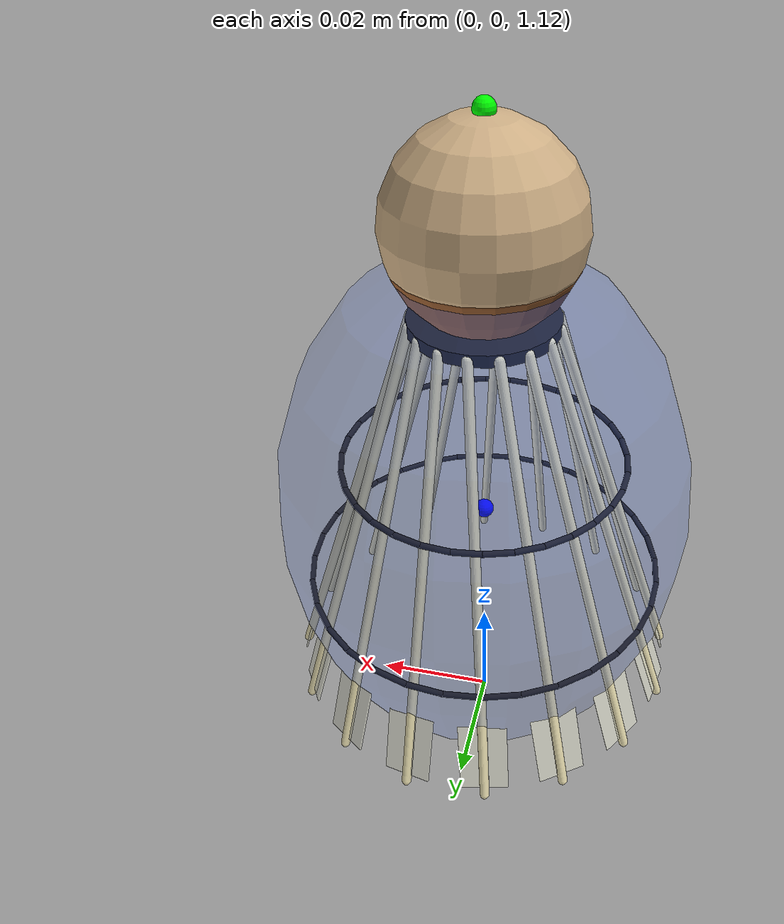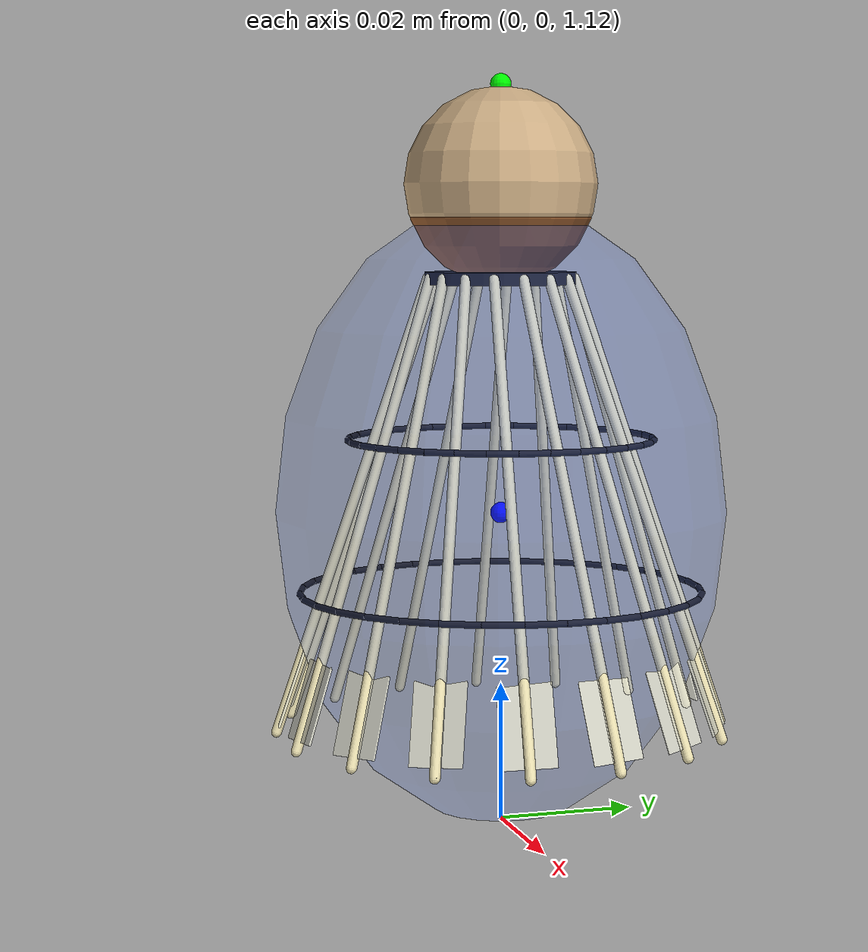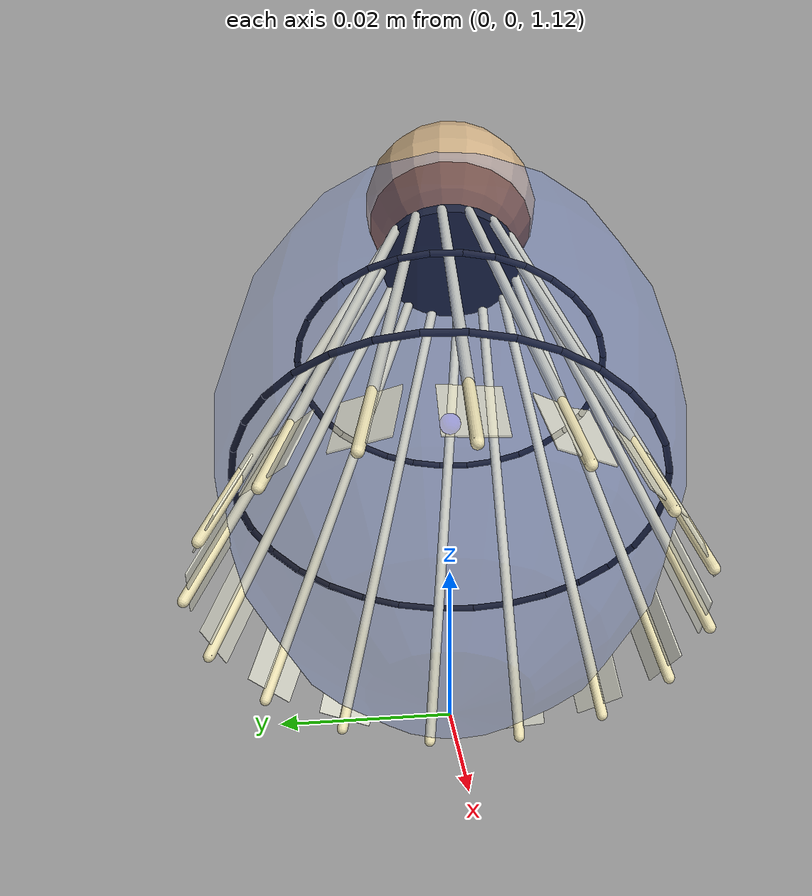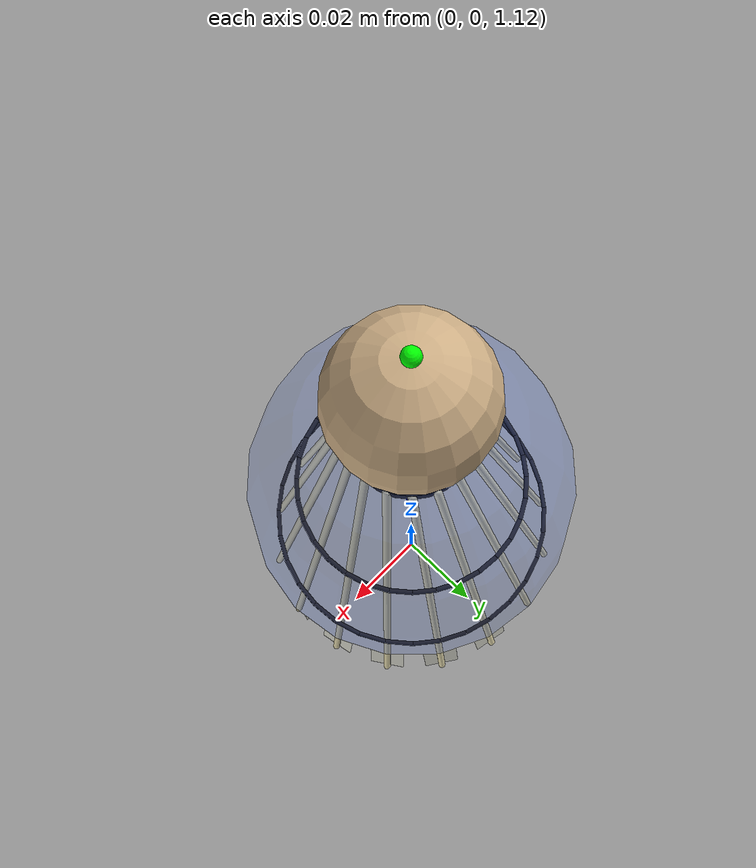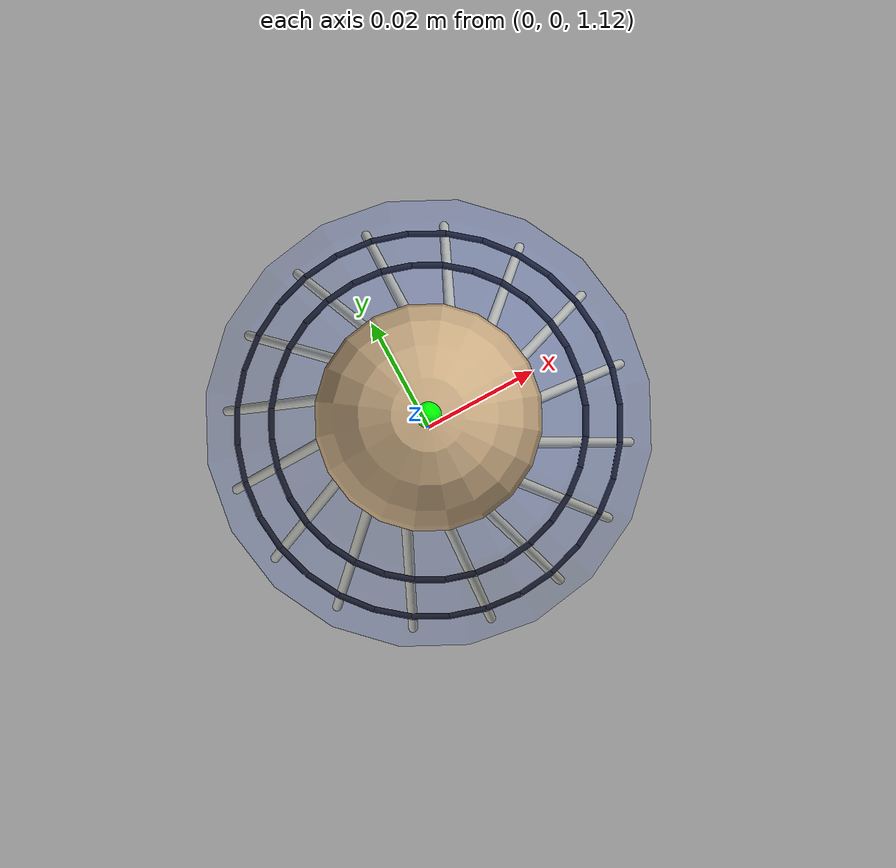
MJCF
<mujoco model="badminton_shuttlecock_nominal_v1">
  <compiler angle="degree" autolimits="true"/>
  <option timestep="0.0005" integrator="implicitfast" gravity="0 0 -9.81" wind="0 0 0"/>

  <default>
    <default class="visual">
      <geom contype="0" conaffinity="0" group="2"/>
    </default>
    <default class="collision">
      <geom contype="1" conaffinity="1" group="1" friction="0.6 0.01 0.001" solref="0.002 1" solimp="0.90 0.95 0.001 0.5 2"/>
    </default>
  </default>

  <asset>
    <material name="cork" rgba="0.56 0.34 0.17 1"/>
    <material name="leather" rgba="0.80 0.68 0.52 1"/>
    <material name="feather" rgba="0.95 0.95 0.88 0.72"/>
    <material name="quill" rgba="0.92 0.88 0.70 1"/>
    <material name="thread" rgba="0.10 0.08 0.06 1"/>
    <material name="aero" rgba="0.20 0.40 1.00 0.07"/>
  </asset>

  <worldbody>
    <light name="top_light" pos="0 0 4" dir="0 0 -1"/>
    <geom name="floor" type="plane" size="4 4 0.1" rgba="0.85 0.85 0.85 1"/>
    <camera name="shuttle_closeup" mode="fixed" pos="0.22 -0.34 1.25" xyaxes="0.839570 0.543251 0 -0.117856 0.182142 0.976184"/>
    <camera name="shuttle_side" mode="fixed" pos="0.42 0 1.20" xyaxes="0 1 0 0 0 1"/>
    <camera name="shuttle_top" mode="fixed" pos="0 0 1.62" xyaxes="1 0 0 0 1 0"/>

    <!-- Body origin is the estimated center of mass. +Z points toward the cork/base/nose. -->
    <body name="shuttle" pos="0 0 1.20">
      <freejoint name="shuttle_free"/>
      <inertial pos="0 0 0" mass="0.00519" diaginertia="3.32e-6 3.32e-6 1.06e-6"/>

      <site name="shuttle_com" pos="0 0 0" size="0.0015" rgba="1 0 0 1"/>
      <site name="shuttle_cp_nominal" pos="0 0 -0.035" size="0.0015" rgba="0 0 1 1"/>
      <site name="shuttle_nose" pos="0 0 0.026" size="0.0015" rgba="0 1 0 1"/>
      <site name="cork_contact_site" pos="0 0 0.011154" size="0.0020" rgba="1 0.5 0 1"/>

      <!-- Real contact should happen mainly at the cork/base. Feather collision is disabled. -->
      <geom class="collision" name="cork_collision" type="sphere" pos="0 0 0.011154" size="0.0135" material="cork"/>
      <geom class="visual" name="leather_cap_visual" type="sphere" pos="0 0 0.012000" size="0.0138" material="leather"/>
      <geom class="visual" name="base_top_ring_visual" type="cylinder" pos="0 0 -0.001346" size="0.0108 0.0009" material="thread"/>

      <!-- Aerodynamic proxy: visual only. Custom force code applies drag at this region. -->
      <geom class="visual" name="aero_proxy_visual" type="ellipsoid" pos="0 0 -0.035" size="0.0325 0.0325 0.045" material="aero"/>

      <geom class="visual" name="feather_quill_00" type="capsule" fromto="0.010500 0.000000 -0.001346 0.031790 0.006757 -0.066346" size="0.00075" material="quill"/>
      <geom class="visual" name="feather_vane_00_0" type="box" pos="0.015610 0.001622 -0.016946" quat="0.809190 0.009494 0.584994 0.053885" size="0.009622 0.001750 0.000120" material="feather"/>
      <geom class="visual" name="feather_vane_00_1" type="box" pos="0.021464 0.003480 -0.034821" quat="0.809146 -0.012666 0.583299 0.069882" size="0.011341 0.002750 0.000120" material="feather"/>
      <geom class="visual" name="feather_vane_00_2" type="box" pos="0.027745 0.005473 -0.053996" quat="0.808428 -0.036368 0.581002 0.086942" size="0.011684 0.003750 0.000120" material="feather"/>
      <geom class="visual" name="feather_quill_01" type="capsule" fromto="0.009701 0.004018 -0.001346 0.026784 0.018408 -0.066346" size="0.00075" material="quill"/>
      <geom class="visual" name="feather_vane_01_0" type="box" pos="0.013801 0.007472 -0.016946" quat="0.783129 -0.104816 0.575606 0.210714" size="0.009622 0.001750 0.000120" material="feather"/>
      <geom class="visual" name="feather_vane_01_1" type="box" pos="0.018499 0.011429 -0.034821" quat="0.779966 -0.126218 0.569621 0.226395" size="0.011341 0.002750 0.000120" material="feather"/>
      <geom class="visual" name="feather_vane_01_2" type="box" pos="0.023538 0.015674 -0.053996" quat="0.775933 -0.149017 0.562743 0.242988" size="0.011684 0.003750 0.000120" material="feather"/>
      <geom class="visual" name="feather_quill_02" type="capsule" fromto="0.007425 0.007425 -0.001346 0.017701 0.027257 -0.066346" size="0.00075" material="quill"/>
      <geom class="visual" name="feather_vane_02_0" type="box" pos="0.009891 0.012184 -0.016946" quat="0.726973 -0.215097 0.544097 0.359446" size="0.009622 0.001750 0.000120" material="feather"/>
      <geom class="visual" name="feather_vane_02_1" type="box" pos="0.012717 0.017638 -0.034821" quat="0.720811 -0.234921 0.534051 0.374209" size="0.011341 0.002750 0.000120" material="feather"/>
      <geom class="visual" name="feather_vane_02_2" type="box" pos="0.015748 0.023489 -0.053996" quat="0.713619 -0.255939 0.522858 0.389696" size="0.011684 0.003750 0.000120" material="feather"/>
      <geom class="visual" name="feather_quill_03" type="capsule" fromto="0.004018 0.009701 -0.001346 0.005923 0.031956 -0.066346" size="0.00075" material="quill"/>
      <geom class="visual" name="feather_vane_03_0" type="box" pos="0.004475 0.015042 -0.016946" quat="0.642880 -0.317112 0.491679 0.494365" size="0.009622 0.001750 0.000120" material="feather"/>
      <geom class="visual" name="feather_vane_03_1" type="box" pos="0.004999 0.021162 -0.034821" quat="0.633956 -0.334595 0.477959 0.507642" size="0.011341 0.002750 0.000120" material="feather"/>
      <geom class="visual" name="feather_vane_03_2" type="box" pos="0.005561 0.027727 -0.053996" quat="0.623881 -0.353026 0.462880 0.521428" size="0.011684 0.003750 0.000120" material="feather"/>
      <geom class="visual" name="feather_quill_04" type="capsule" fromto="0.000000 0.010500 -0.001346 -0.006757 0.031790 -0.066346" size="0.00075" material="quill"/>
      <geom class="visual" name="feather_vane_04_0" type="box" pos="-0.001622 0.015610 -0.016946" quat="0.534081 -0.406940 0.420366 0.610286" size="0.009622 0.001750 0.000120" material="feather"/>
      <geom class="visual" name="feather_vane_04_1" type="box" pos="-0.003480 0.021464 -0.034821" quat="0.522739 -0.421411 0.403499 0.621567" size="0.011341 0.002750 0.000120" material="feather"/>
      <geom class="visual" name="feather_vane_04_2" type="box" pos="-0.005473 0.027745 -0.053996" quat="0.510168 -0.436546 0.385114 0.633122" size="0.011684 0.003750 0.000120" material="feather"/>
      <geom class="visual" name="feather_quill_05" type="capsule" fromto="-0.004018 0.009701 -0.001346 -0.018408 0.026784 -0.066346" size="0.00075" material="quill"/>
      <geom class="visual" name="feather_vane_05_0" type="box" pos="-0.007472 0.013801 -0.016946" quat="0.404758 -0.481131 0.332899 0.702753" size="0.009622 0.001750 0.000120" material="feather"/>
      <geom class="visual" name="feather_vane_05_1" type="box" pos="-0.011429 0.018499 -0.034821" quat="0.391433 -0.492032 0.313533 0.711605" size="0.011341 0.002750 0.000120" material="feather"/>
      <geom class="visual" name="feather_vane_05_2" type="box" pos="-0.015674 0.023538 -0.053996" quat="0.376849 -0.503290 0.292549 0.720486" size="0.011684 0.003750 0.000120" material="feather"/>
      <geom class="visual" name="feather_quill_06" type="capsule" fromto="-0.007425 0.007425 -0.001346 -0.027257 0.017701 -0.066346" size="0.00075" material="quill"/>
      <geom class="visual" name="feather_vane_06_0" type="box" pos="-0.012184 0.009891 -0.016946" quat="0.259881 -0.536831 0.232639 0.768215" size="0.009622 0.001750 0.000120" material="feather"/>
      <geom class="visual" name="feather_vane_06_1" type="box" pos="-0.017638 0.012717 -0.034821" quat="0.245085 -0.543745 0.211517 0.774296" size="0.011341 0.002750 0.000120" material="feather"/>
      <geom class="visual" name="feather_vane_06_2" type="box" pos="-0.023489 0.015748 -0.053996" quat="0.229048 -0.550693 0.188740 0.780161" size="0.011684 0.003750 0.000120" material="feather"/>
      <geom class="visual" name="feather_quill_07" type="capsule" fromto="-0.009701 0.004018 -0.001346 -0.031956 0.005923 -0.066346" size="0.00075" material="quill"/>
      <geom class="visual" name="feather_vane_07_0" type="box" pos="-0.015042 0.004475 -0.016946" quat="0.105016 -0.571902 0.123438 0.804154" size="0.009622 0.001750 0.000120" material="feather"/>
      <geom class="visual" name="feather_vane_07_1" type="box" pos="-0.021162 0.004999 -0.034821" quat="0.089318 -0.574563 0.101374 0.807232" size="0.011341 0.002750 0.000120" material="feather"/>
      <geom class="visual" name="feather_vane_07_2" type="box" pos="-0.027727 0.005561 -0.053996" quat="0.072445 -0.576933 0.077679 0.809856" size="0.011684 0.003750 0.000120" material="feather"/>
      <geom class="visual" name="feather_quill_08" type="capsule" fromto="-0.010500 0.000000 -0.001346 -0.031790 -0.006757 -0.066346" size="0.00075" material="quill"/>
      <geom class="visual" name="feather_vane_08_0" type="box" pos="-0.015610 -0.001622 -0.016946" quat="-0.053885 -0.584994 0.009494 0.809190" size="0.009622 0.001750 0.000120" material="feather"/>
      <geom class="visual" name="feather_vane_08_1" type="box" pos="-0.021464 -0.003480 -0.034821" quat="-0.069882 -0.583299 -0.012666 0.809146" size="0.011341 0.002750 0.000120" material="feather"/>
      <geom class="visual" name="feather_vane_08_2" type="box" pos="-0.027745 -0.005473 -0.053996" quat="-0.086942 -0.581002 -0.036368 0.808428" size="0.011684 0.003750 0.000120" material="feather"/>
      <geom class="visual" name="feather_quill_09" type="capsule" fromto="-0.009701 -0.004018 -0.001346 -0.026784 -0.018408 -0.066346" size="0.00075" material="quill"/>
      <geom class="visual" name="feather_vane_09_0" type="box" pos="-0.013801 -0.007472 -0.016946" quat="-0.210714 -0.575606 -0.104816 0.783129" size="0.009622 0.001750 0.000120" material="feather"/>
      <geom class="visual" name="feather_vane_09_1" type="box" pos="-0.018499 -0.011429 -0.034821" quat="-0.226395 -0.569621 -0.126218 0.779966" size="0.011341 0.002750 0.000120" material="feather"/>
      <geom class="visual" name="feather_vane_09_2" type="box" pos="-0.023538 -0.015674 -0.053996" quat="-0.242988 -0.562743 -0.149017 0.775933" size="0.011684 0.003750 0.000120" material="feather"/>
      <geom class="visual" name="feather_quill_10" type="capsule" fromto="-0.007425 -0.007425 -0.001346 -0.017701 -0.027257 -0.066346" size="0.00075" material="quill"/>
      <geom class="visual" name="feather_vane_10_0" type="box" pos="-0.009891 -0.012184 -0.016946" quat="-0.359446 -0.544097 -0.215097 0.726973" size="0.009622 0.001750 0.000120" material="feather"/>
      <geom class="visual" name="feather_vane_10_1" type="box" pos="-0.012717 -0.017638 -0.034821" quat="-0.374209 -0.534051 -0.234921 0.720811" size="0.011341 0.002750 0.000120" material="feather"/>
      <geom class="visual" name="feather_vane_10_2" type="box" pos="-0.015748 -0.023489 -0.053996" quat="-0.389696 -0.522858 -0.255939 0.713619" size="0.011684 0.003750 0.000120" material="feather"/>
      <geom class="visual" name="feather_quill_11" type="capsule" fromto="-0.004018 -0.009701 -0.001346 -0.005923 -0.031956 -0.066346" size="0.00075" material="quill"/>
      <geom class="visual" name="feather_vane_11_0" type="box" pos="-0.004475 -0.015042 -0.016946" quat="-0.494365 -0.491679 -0.317112 0.642880" size="0.009622 0.001750 0.000120" material="feather"/>
      <geom class="visual" name="feather_vane_11_1" type="box" pos="-0.004999 -0.021162 -0.034821" quat="0.507642 0.477959 0.334595 -0.633956" size="0.011341 0.002750 0.000120" material="feather"/>
      <geom class="visual" name="feather_vane_11_2" type="box" pos="-0.005561 -0.027727 -0.053996" quat="0.521428 0.462880 0.353026 -0.623881" size="0.011684 0.003750 0.000120" material="feather"/>
      <geom class="visual" name="feather_quill_12" type="capsule" fromto="-0.000000 -0.010500 -0.001346 0.006757 -0.031790 -0.066346" size="0.00075" material="quill"/>
      <geom class="visual" name="feather_vane_12_0" type="box" pos="0.001622 -0.015610 -0.016946" quat="0.610286 0.420366 0.406940 -0.534081" size="0.009622 0.001750 0.000120" material="feather"/>
      <geom class="visual" name="feather_vane_12_1" type="box" pos="0.003480 -0.021464 -0.034821" quat="0.621567 0.403499 0.421411 -0.522739" size="0.011341 0.002750 0.000120" material="feather"/>
      <geom class="visual" name="feather_vane_12_2" type="box" pos="0.005473 -0.027745 -0.053996" quat="0.633122 0.385114 0.436546 -0.510168" size="0.011684 0.003750 0.000120" material="feather"/>
      <geom class="visual" name="feather_quill_13" type="capsule" fromto="0.004018 -0.009701 -0.001346 0.018408 -0.026784 -0.066346" size="0.00075" material="quill"/>
      <geom class="visual" name="feather_vane_13_0" type="box" pos="0.007472 -0.013801 -0.016946" quat="0.702753 0.332899 0.481131 -0.404758" size="0.009622 0.001750 0.000120" material="feather"/>
      <geom class="visual" name="feather_vane_13_1" type="box" pos="0.011429 -0.018499 -0.034821" quat="0.711605 0.313533 0.492032 -0.391433" size="0.011341 0.002750 0.000120" material="feather"/>
      <geom class="visual" name="feather_vane_13_2" type="box" pos="0.015674 -0.023538 -0.053996" quat="0.720486 0.292549 0.503290 -0.376849" size="0.011684 0.003750 0.000120" material="feather"/>
      <geom class="visual" name="feather_quill_14" type="capsule" fromto="0.007425 -0.007425 -0.001346 0.027257 -0.017701 -0.066346" size="0.00075" material="quill"/>
      <geom class="visual" name="feather_vane_14_0" type="box" pos="0.012184 -0.009891 -0.016946" quat="0.768215 0.232639 0.536831 -0.259881" size="0.009622 0.001750 0.000120" material="feather"/>
      <geom class="visual" name="feather_vane_14_1" type="box" pos="0.017638 -0.012717 -0.034821" quat="0.774296 0.211517 0.543745 -0.245085" size="0.011341 0.002750 0.000120" material="feather"/>
      <geom class="visual" name="feather_vane_14_2" type="box" pos="0.023489 -0.015748 -0.053996" quat="0.780161 0.188740 0.550693 -0.229048" size="0.011684 0.003750 0.000120" material="feather"/>
      <geom class="visual" name="feather_quill_15" type="capsule" fromto="0.009701 -0.004018 -0.001346 0.031956 -0.005923 -0.066346" size="0.00075" material="quill"/>
      <geom class="visual" name="feather_vane_15_0" type="box" pos="0.015042 -0.004475 -0.016946" quat="0.804154 0.123438 0.571902 -0.105016" size="0.009622 0.001750 0.000120" material="feather"/>
      <geom class="visual" name="feather_vane_15_1" type="box" pos="0.021162 -0.004999 -0.034821" quat="0.807232 0.101374 0.574563 -0.089318" size="0.011341 0.002750 0.000120" material="feather"/>
      <geom class="visual" name="feather_vane_15_2" type="box" pos="0.027727 -0.005561 -0.053996" quat="0.809856 0.077679 0.576933 -0.072445" size="0.011684 0.003750 0.000120" material="feather"/>

      <geom class="visual" name="thread_front_00" type="capsule" fromto="0.022000 0.000000 -0.024346 0.021577 0.004292 -0.024346" size="0.000450" material="thread"/>
      <geom class="visual" name="thread_front_01" type="capsule" fromto="0.021577 0.004292 -0.024346 0.020325 0.008419 -0.024346" size="0.000450" material="thread"/>
      <geom class="visual" name="thread_front_02" type="capsule" fromto="0.020325 0.008419 -0.024346 0.018292 0.012223 -0.024346" size="0.000450" material="thread"/>
      <geom class="visual" name="thread_front_03" type="capsule" fromto="0.018292 0.012223 -0.024346 0.015556 0.015556 -0.024346" size="0.000450" material="thread"/>
      <geom class="visual" name="thread_front_04" type="capsule" fromto="0.015556 0.015556 -0.024346 0.012223 0.018292 -0.024346" size="0.000450" material="thread"/>
      <geom class="visual" name="thread_front_05" type="capsule" fromto="0.012223 0.018292 -0.024346 0.008419 0.020325 -0.024346" size="0.000450" material="thread"/>
      <geom class="visual" name="thread_front_06" type="capsule" fromto="0.008419 0.020325 -0.024346 0.004292 0.021577 -0.024346" size="0.000450" material="thread"/>
      <geom class="visual" name="thread_front_07" type="capsule" fromto="0.004292 0.021577 -0.024346 0.000000 0.022000 -0.024346" size="0.000450" material="thread"/>
      <geom class="visual" name="thread_front_08" type="capsule" fromto="0.000000 0.022000 -0.024346 -0.004292 0.021577 -0.024346" size="0.000450" material="thread"/>
      <geom class="visual" name="thread_front_09" type="capsule" fromto="-0.004292 0.021577 -0.024346 -0.008419 0.020325 -0.024346" size="0.000450" material="thread"/>
      <geom class="visual" name="thread_front_10" type="capsule" fromto="-0.008419 0.020325 -0.024346 -0.012223 0.018292 -0.024346" size="0.000450" material="thread"/>
      <geom class="visual" name="thread_front_11" type="capsule" fromto="-0.012223 0.018292 -0.024346 -0.015556 0.015556 -0.024346" size="0.000450" material="thread"/>
      <geom class="visual" name="thread_front_12" type="capsule" fromto="-0.015556 0.015556 -0.024346 -0.018292 0.012223 -0.024346" size="0.000450" material="thread"/>
      <geom class="visual" name="thread_front_13" type="capsule" fromto="-0.018292 0.012223 -0.024346 -0.020325 0.008419 -0.024346" size="0.000450" material="thread"/>
      <geom class="visual" name="thread_front_14" type="capsule" fromto="-0.020325 0.008419 -0.024346 -0.021577 0.004292 -0.024346" size="0.000450" material="thread"/>
      <geom class="visual" name="thread_front_15" type="capsule" fromto="-0.021577 0.004292 -0.024346 -0.022000 0.000000 -0.024346" size="0.000450" material="thread"/>
      <geom class="visual" name="thread_front_16" type="capsule" fromto="-0.022000 0.000000 -0.024346 -0.021577 -0.004292 -0.024346" size="0.000450" material="thread"/>
      <geom class="visual" name="thread_front_17" type="capsule" fromto="-0.021577 -0.004292 -0.024346 -0.020325 -0.008419 -0.024346" size="0.000450" material="thread"/>
      <geom class="visual" name="thread_front_18" type="capsule" fromto="-0.020325 -0.008419 -0.024346 -0.018292 -0.012223 -0.024346" size="0.000450" material="thread"/>
      <geom class="visual" name="thread_front_19" type="capsule" fromto="-0.018292 -0.012223 -0.024346 -0.015556 -0.015556 -0.024346" size="0.000450" material="thread"/>
      <geom class="visual" name="thread_front_20" type="capsule" fromto="-0.015556 -0.015556 -0.024346 -0.012223 -0.018292 -0.024346" size="0.000450" material="thread"/>
      <geom class="visual" name="thread_front_21" type="capsule" fromto="-0.012223 -0.018292 -0.024346 -0.008419 -0.020325 -0.024346" size="0.000450" material="thread"/>
      <geom class="visual" name="thread_front_22" type="capsule" fromto="-0.008419 -0.020325 -0.024346 -0.004292 -0.021577 -0.024346" size="0.000450" material="thread"/>
      <geom class="visual" name="thread_front_23" type="capsule" fromto="-0.004292 -0.021577 -0.024346 -0.000000 -0.022000 -0.024346" size="0.000450" material="thread"/>
      <geom class="visual" name="thread_front_24" type="capsule" fromto="-0.000000 -0.022000 -0.024346 0.004292 -0.021577 -0.024346" size="0.000450" material="thread"/>
      <geom class="visual" name="thread_front_25" type="capsule" fromto="0.004292 -0.021577 -0.024346 0.008419 -0.020325 -0.024346" size="0.000450" material="thread"/>
      <geom class="visual" name="thread_front_26" type="capsule" fromto="0.008419 -0.020325 -0.024346 0.012223 -0.018292 -0.024346" size="0.000450" material="thread"/>
      <geom class="visual" name="thread_front_27" type="capsule" fromto="0.012223 -0.018292 -0.024346 0.015556 -0.015556 -0.024346" size="0.000450" material="thread"/>
      <geom class="visual" name="thread_front_28" type="capsule" fromto="0.015556 -0.015556 -0.024346 0.018292 -0.012223 -0.024346" size="0.000450" material="thread"/>
      <geom class="visual" name="thread_front_29" type="capsule" fromto="0.018292 -0.012223 -0.024346 0.020325 -0.008419 -0.024346" size="0.000450" material="thread"/>
      <geom class="visual" name="thread_front_30" type="capsule" fromto="0.020325 -0.008419 -0.024346 0.021577 -0.004292 -0.024346" size="0.000450" material="thread"/>
      <geom class="visual" name="thread_front_31" type="capsule" fromto="0.021577 -0.004292 -0.024346 0.022000 -0.000000 -0.024346" size="0.000450" material="thread"/>
      <geom class="visual" name="thread_rear_00" type="capsule" fromto="0.029000 0.000000 -0.046346 0.028443 0.005658 -0.046346" size="0.000450" material="thread"/>
      <geom class="visual" name="thread_rear_01" type="capsule" fromto="0.028443 0.005658 -0.046346 0.026793 0.011098 -0.046346" size="0.000450" material="thread"/>
      <geom class="visual" name="thread_rear_02" type="capsule" fromto="0.026793 0.011098 -0.046346 0.024113 0.016112 -0.046346" size="0.000450" material="thread"/>
      <geom class="visual" name="thread_rear_03" type="capsule" fromto="0.024113 0.016112 -0.046346 0.020506 0.020506 -0.046346" size="0.000450" material="thread"/>
      <geom class="visual" name="thread_rear_04" type="capsule" fromto="0.020506 0.020506 -0.046346 0.016112 0.024113 -0.046346" size="0.000450" material="thread"/>
      <geom class="visual" name="thread_rear_05" type="capsule" fromto="0.016112 0.024113 -0.046346 0.011098 0.026793 -0.046346" size="0.000450" material="thread"/>
      <geom class="visual" name="thread_rear_06" type="capsule" fromto="0.011098 0.026793 -0.046346 0.005658 0.028443 -0.046346" size="0.000450" material="thread"/>
      <geom class="visual" name="thread_rear_07" type="capsule" fromto="0.005658 0.028443 -0.046346 0.000000 0.029000 -0.046346" size="0.000450" material="thread"/>
      <geom class="visual" name="thread_rear_08" type="capsule" fromto="0.000000 0.029000 -0.046346 -0.005658 0.028443 -0.046346" size="0.000450" material="thread"/>
      <geom class="visual" name="thread_rear_09" type="capsule" fromto="-0.005658 0.028443 -0.046346 -0.011098 0.026793 -0.046346" size="0.000450" material="thread"/>
      <geom class="visual" name="thread_rear_10" type="capsule" fromto="-0.011098 0.026793 -0.046346 -0.016112 0.024113 -0.046346" size="0.000450" material="thread"/>
      <geom class="visual" name="thread_rear_11" type="capsule" fromto="-0.016112 0.024113 -0.046346 -0.020506 0.020506 -0.046346" size="0.000450" material="thread"/>
      <geom class="visual" name="thread_rear_12" type="capsule" fromto="-0.020506 0.020506 -0.046346 -0.024113 0.016112 -0.046346" size="0.000450" material="thread"/>
      <geom class="visual" name="thread_rear_13" type="capsule" fromto="-0.024113 0.016112 -0.046346 -0.026793 0.011098 -0.046346" size="0.000450" material="thread"/>
      <geom class="visual" name="thread_rear_14" type="capsule" fromto="-0.026793 0.011098 -0.046346 -0.028443 0.005658 -0.046346" size="0.000450" material="thread"/>
      <geom class="visual" name="thread_rear_15" type="capsule" fromto="-0.028443 0.005658 -0.046346 -0.029000 0.000000 -0.046346" size="0.000450" material="thread"/>
      <geom class="visual" name="thread_rear_16" type="capsule" fromto="-0.029000 0.000000 -0.046346 -0.028443 -0.005658 -0.046346" size="0.000450" material="thread"/>
      <geom class="visual" name="thread_rear_17" type="capsule" fromto="-0.028443 -0.005658 -0.046346 -0.026793 -0.011098 -0.046346" size="0.000450" material="thread"/>
      <geom class="visual" name="thread_rear_18" type="capsule" fromto="-0.026793 -0.011098 -0.046346 -0.024113 -0.016112 -0.046346" size="0.000450" material="thread"/>
      <geom class="visual" name="thread_rear_19" type="capsule" fromto="-0.024113 -0.016112 -0.046346 -0.020506 -0.020506 -0.046346" size="0.000450" material="thread"/>
      <geom class="visual" name="thread_rear_20" type="capsule" fromto="-0.020506 -0.020506 -0.046346 -0.016112 -0.024113 -0.046346" size="0.000450" material="thread"/>
      <geom class="visual" name="thread_rear_21" type="capsule" fromto="-0.016112 -0.024113 -0.046346 -0.011098 -0.026793 -0.046346" size="0.000450" material="thread"/>
      <geom class="visual" name="thread_rear_22" type="capsule" fromto="-0.011098 -0.026793 -0.046346 -0.005658 -0.028443 -0.046346" size="0.000450" material="thread"/>
      <geom class="visual" name="thread_rear_23" type="capsule" fromto="-0.005658 -0.028443 -0.046346 -0.000000 -0.029000 -0.046346" size="0.000450" material="thread"/>
      <geom class="visual" name="thread_rear_24" type="capsule" fromto="-0.000000 -0.029000 -0.046346 0.005658 -0.028443 -0.046346" size="0.000450" material="thread"/>
      <geom class="visual" name="thread_rear_25" type="capsule" fromto="0.005658 -0.028443 -0.046346 0.011098 -0.026793 -0.046346" size="0.000450" material="thread"/>
      <geom class="visual" name="thread_rear_26" type="capsule" fromto="0.011098 -0.026793 -0.046346 0.016112 -0.024113 -0.046346" size="0.000450" material="thread"/>
      <geom class="visual" name="thread_rear_27" type="capsule" fromto="0.016112 -0.024113 -0.046346 0.020506 -0.020506 -0.046346" size="0.000450" material="thread"/>
      <geom class="visual" name="thread_rear_28" type="capsule" fromto="0.020506 -0.020506 -0.046346 0.024113 -0.016112 -0.046346" size="0.000450" material="thread"/>
      <geom class="visual" name="thread_rear_29" type="capsule" fromto="0.024113 -0.016112 -0.046346 0.026793 -0.011098 -0.046346" size="0.000450" material="thread"/>
      <geom class="visual" name="thread_rear_30" type="capsule" fromto="0.026793 -0.011098 -0.046346 0.028443 -0.005658 -0.046346" size="0.000450" material="thread"/>
      <geom class="visual" name="thread_rear_31" type="capsule" fromto="0.028443 -0.005658 -0.046346 0.029000 -0.000000 -0.046346" size="0.000450" material="thread"/>
    </body>
  </worldbody>
</mujoco>
